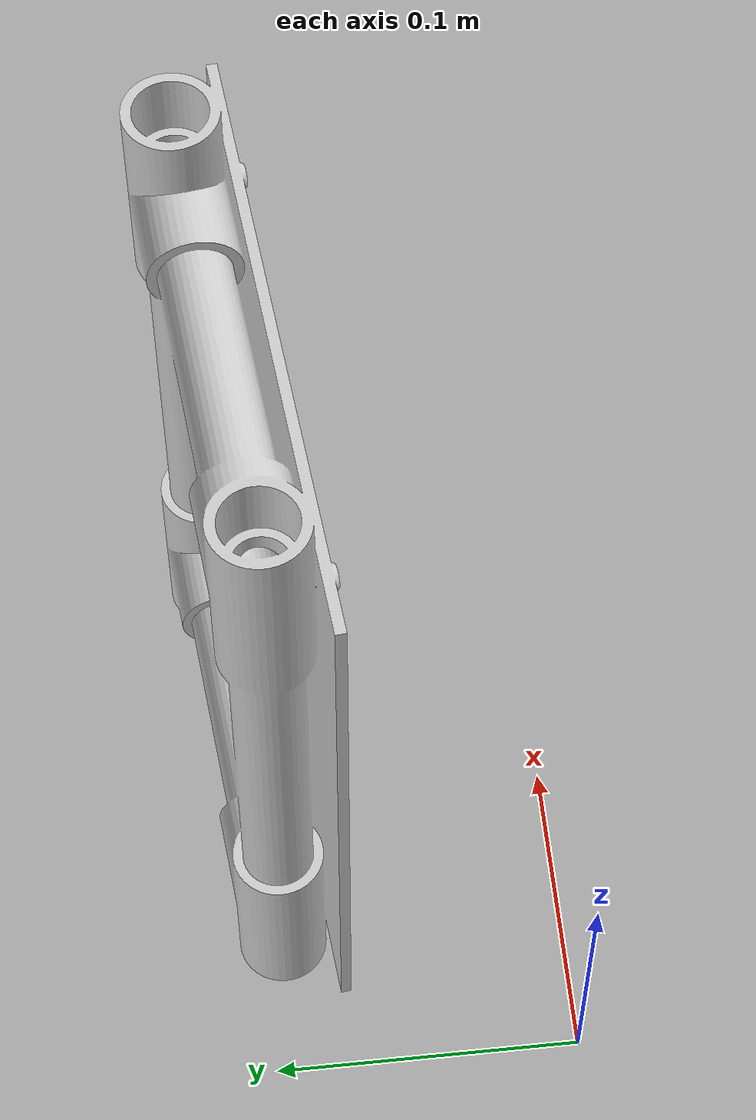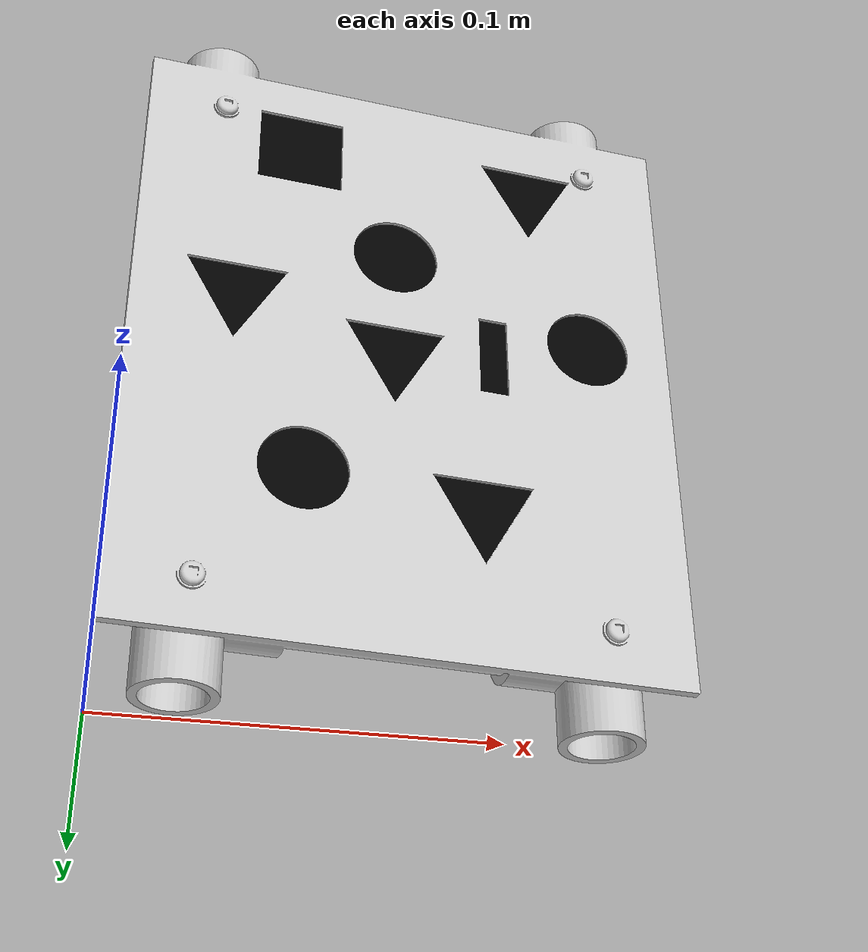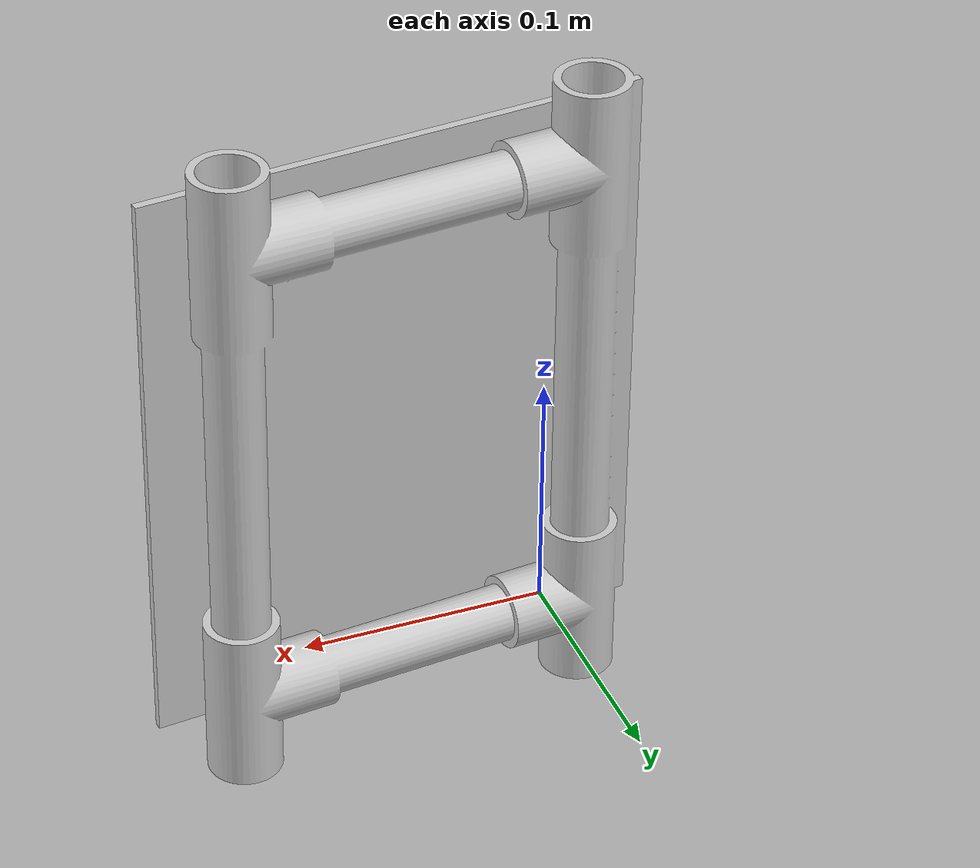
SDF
<?xml version="1.0"?>
<sdf version="1.5">
  <model name="benthic_species">
    <static>true</static>
    <link name="link">
      <collision name="dam_collision">
        <geometry>
          <mesh>
            <uri>model://MATE_props_2019/benthic_species/meshes/benthic_species.dae</uri>
          </mesh>
        </geometry>
      </collision>
      <visual name="visual">
        <cast_shadows>true</cast_shadows>
        <geometry>
          <mesh>
            <uri>model://MATE_props_2019/benthic_species/meshes/benthic_species.dae</uri>
          </mesh>
        </geometry>
      </visual>
    </link>
  </model>
</sdf>
